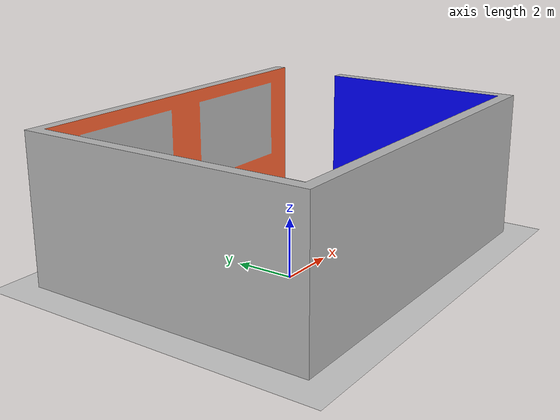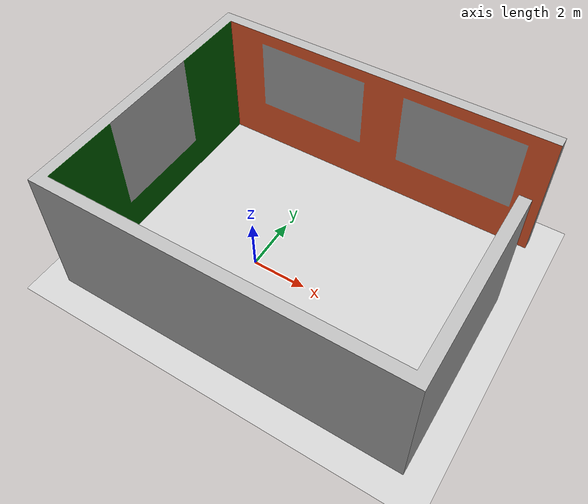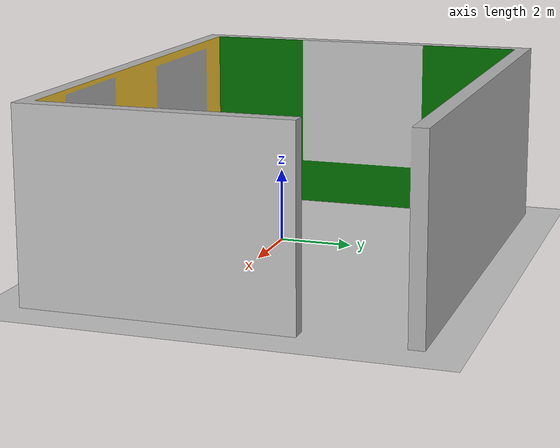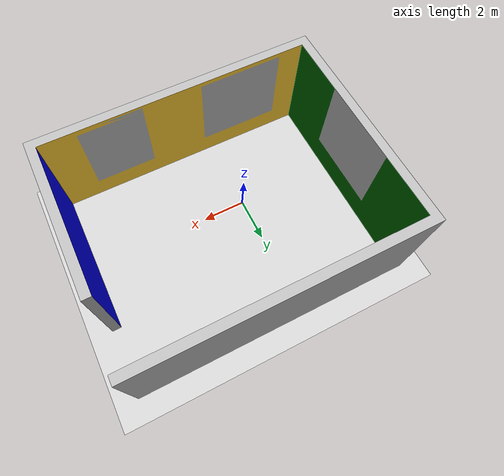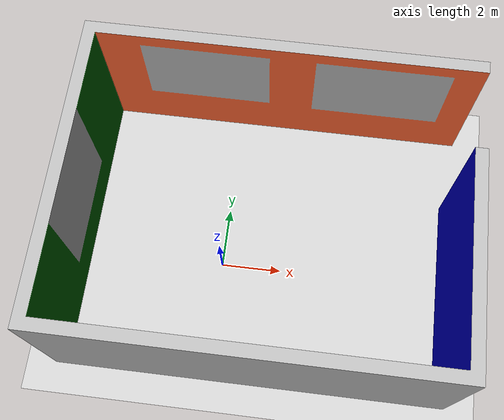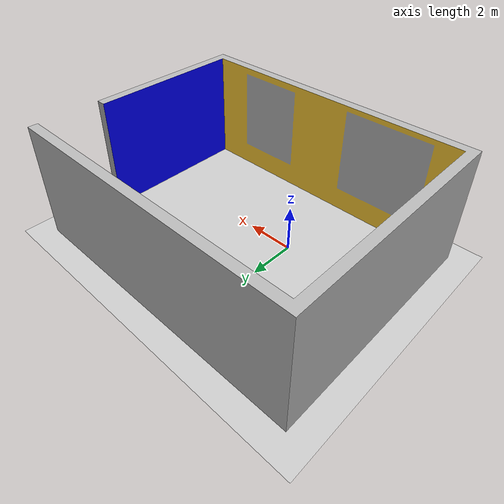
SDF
<?xml version="1.0" ?>
<sdf version="1.4">
  <!-- We use a custom world for the rrbot so that the camera angle is launched correctly -->
  <world name="default">

    <include>
      <uri>model://ground_plane</uri>
    </include>

    <!-- Global light source -->
    <include>
      <uri>model://sun</uri>
    </include>

    <!-- Focus camera on tall pendulum -->
    <gui fullscreen='0'>
      <camera name='user_camera'>
        <pose>4.927360 -4.376610 3.740080 0.000000 0.275643 2.356190</pose>
        <view_controller>orbit</view_controller>
      </camera>
    </gui>

<model name="smartbridge_house_test">
    <pose>-5 -4 0 0 0 0</pose>
    <static>true</static>
    <link name="link">
      <collision name="collision">
        <geometry>
        <mesh>
            <uri>model://smartbridge_house_test/meshes/smartbridge_house.dae</uri>
          </mesh>
        </geometry>
      </collision>

      <visual name="visual">
        <geometry>
          <mesh>
            <uri>model://smartbridge_house_test/meshes/smartbridge_house.dae</uri>
          </mesh>
        </geometry>
      </visual>
    </link>
  </model>
  </world>
</sdf>
